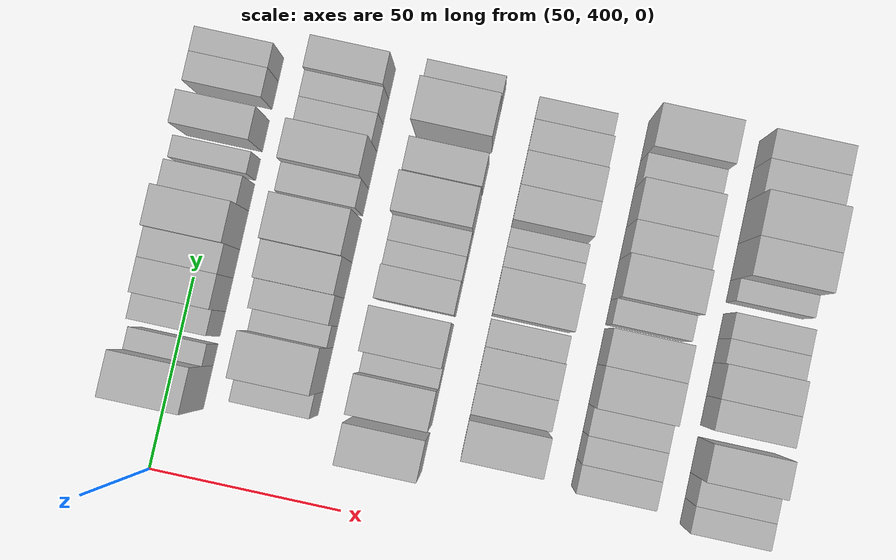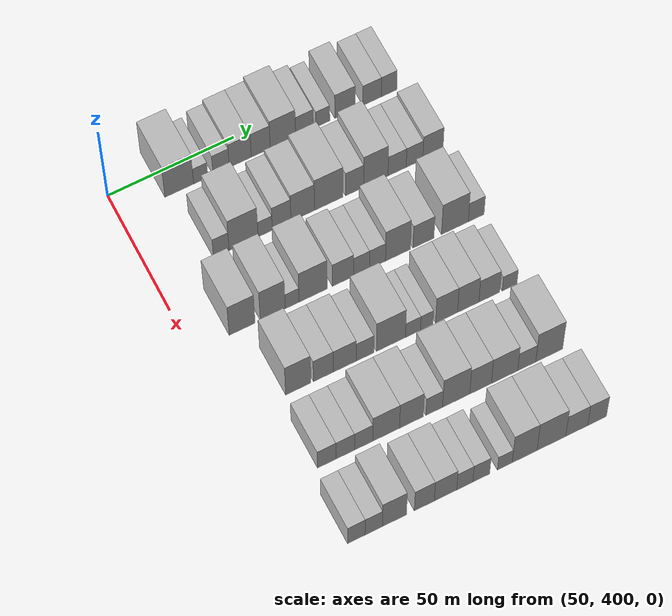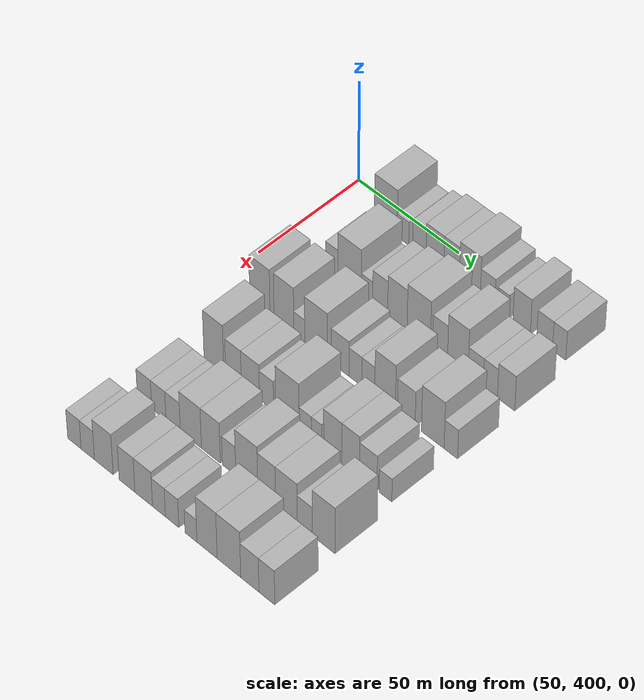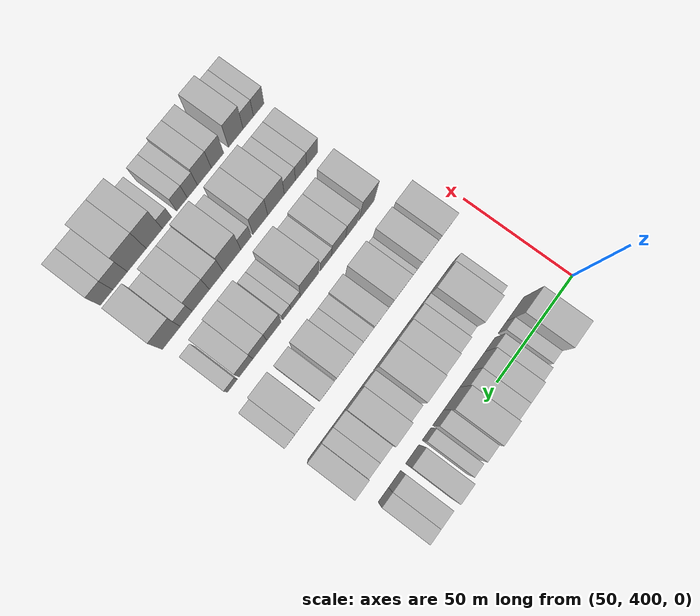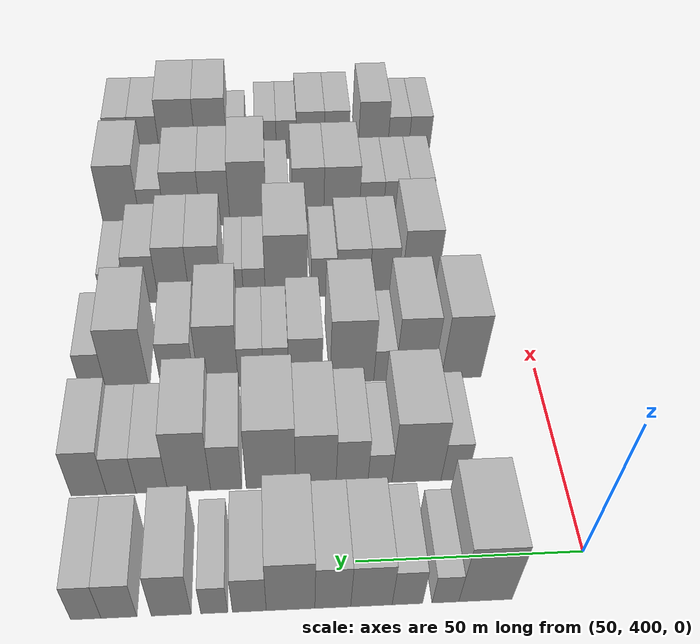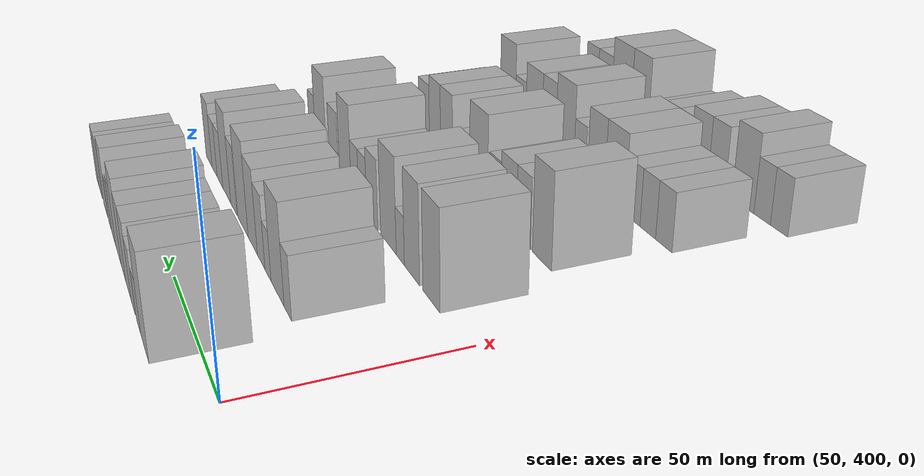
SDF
<sdf version="1.6">
 <world name="default">
  <model name="building_106">
   <static>1</static>
   <pose>50.0000 423.4185 0 0.000000 0.000000 0.000000</pose>
   <link name="link">
    <pose>0 0 12.00 0 0 0</pose>
    <collision name="collision"><geometry><box><size>20.0000 11.3640 24.0000</size></box></geometry></collision>
    <visual name="visual">
     <cast_shadows>0</cast_shadows>
     <geometry><box><size>20.0000 11.3640 24.0000</size></box></geometry>
     <material>
      <script>
       <uri>model://HANNAS_wall/materials/scripts</uri>
       <uri>model://HANNAS_wall/materials/textures</uri>
       <name>vrc/HANNAS_wall</name>
      </script>
     </material>
    </visual>
   </link>
  </model>
  <model name="building_107">
   <static>1</static>
   <pose>50.0000 431.9391 0 0.000000 0.000000 0.000000</pose>
   <link name="link">
    <pose>0 0 6.00 0 0 0</pose>
    <collision name="collision"><geometry><box><size>20.0000 5.6773 12.0000</size></box></geometry></collision>
    <visual name="visual">
     <cast_shadows>0</cast_shadows>
     <geometry><box><size>20.0000 5.6773 12.0000</size></box></geometry>
     <material>
      <script>
       <uri>model://HANNAS_wall/materials/scripts</uri>
       <uri>model://HANNAS_wall/materials/textures</uri>
       <name>vrc/HANNAS_wall</name>
      </script>
     </material>
    </visual>
   </link>
  </model>
  <model name="building_108">
   <static>1</static>
   <pose>50.0000 440.0176 0 0.000000 0.000000 0.000000</pose>
   <link name="link">
    <pose>0 0 7.50 0 0 0</pose>
    <collision name="collision"><geometry><box><size>20.0000 6.4796 15.0000</size></box></geometry></collision>
    <visual name="visual">
     <cast_shadows>0</cast_shadows>
     <geometry><box><size>20.0000 6.4796 15.0000</size></box></geometry>
     <material>
      <script>
       <uri>model://HANNAS_wall/materials/scripts</uri>
       <uri>model://HANNAS_wall/materials/textures</uri>
       <name>vrc/HANNAS_wall</name>
      </script>
     </material>
    </visual>
   </link>
  </model>
  <model name="building_109">
   <static>1</static>
   <pose>50.0000 447.6348 0 0.000000 0.000000 0.000000</pose>
   <link name="link">
    <pose>0 0 9.00 0 0 0</pose>
    <collision name="collision"><geometry><box><size>20.0000 8.7548 18.0000</size></box></geometry></collision>
    <visual name="visual">
     <cast_shadows>0</cast_shadows>
     <geometry><box><size>20.0000 8.7548 18.0000</size></box></geometry>
     <material>
      <script>
       <uri>model://HANNAS_wall/materials/scripts</uri>
       <uri>model://HANNAS_wall/materials/textures</uri>
       <name>vrc/HANNAS_wall</name>
      </script>
     </material>
    </visual>
   </link>
  </model>
  <model name="building_110">
   <static>1</static>
   <pose>50.0000 455.7867 0 0.000000 0.000000 0.000000</pose>
   <link name="link">
    <pose>0 0 9.00 0 0 0</pose>
    <collision name="collision"><geometry><box><size>20.0000 7.5490 18.0000</size></box></geometry></collision>
    <visual name="visual">
     <cast_shadows>0</cast_shadows>
     <geometry><box><size>20.0000 7.5490 18.0000</size></box></geometry>
     <material>
      <script>
       <uri>model://HANNAS_wall/materials/scripts</uri>
       <uri>model://HANNAS_wall/materials/textures</uri>
       <name>vrc/HANNAS_wall</name>
      </script>
     </material>
    </visual>
   </link>
  </model>
  <model name="building_111">
   <static>1</static>
   <pose>50.0000 464.6653 0 0.000000 0.000000 0.000000</pose>
   <link name="link">
    <pose>0 0 10.50 0 0 0</pose>
    <collision name="collision"><geometry><box><size>20.0000 10.2081 21.0000</size></box></geometry></collision>
    <visual name="visual">
     <cast_shadows>0</cast_shadows>
     <geometry><box><size>20.0000 10.2081 21.0000</size></box></geometry>
     <material>
      <script>
       <uri>model://HANNAS_wall/materials/scripts</uri>
       <uri>model://HANNAS_wall/materials/textures</uri>
       <name>vrc/HANNAS_wall</name>
      </script>
     </material>
    </visual>
   </link>
  </model>
  <model name="building_112">
   <static>1</static>
   <pose>50.0000 473.3105 0 0.000000 0.000000 0.000000</pose>
   <link name="link">
    <pose>0 0 7.50 0 0 0</pose>
    <collision name="collision"><geometry><box><size>20.0000 7.0825 15.0000</size></box></geometry></collision>
    <visual name="visual">
     <cast_shadows>0</cast_shadows>
     <geometry><box><size>20.0000 7.0825 15.0000</size></box></geometry>
     <material>
      <script>
       <uri>model://HANNAS_wall/materials/scripts</uri>
       <uri>model://HANNAS_wall/materials/textures</uri>
       <name>vrc/HANNAS_wall</name>
      </script>
     </material>
    </visual>
   </link>
  </model>
  <model name="building_113">
   <static>1</static>
   <pose>50.0000 480.6647 0 0.000000 0.000000 0.000000</pose>
   <link name="link">
    <pose>0 0 6.00 0 0 0</pose>
    <collision name="collision"><geometry><box><size>20.0000 5.6259 12.0000</size></box></geometry></collision>
    <visual name="visual">
     <cast_shadows>0</cast_shadows>
     <geometry><box><size>20.0000 5.6259 12.0000</size></box></geometry>
     <material>
      <script>
       <uri>model://HANNAS_wall/materials/scripts</uri>
       <uri>model://HANNAS_wall/materials/textures</uri>
       <name>vrc/HANNAS_wall</name>
      </script>
     </material>
    </visual>
   </link>
  </model>
  <model name="building_114">
   <static>1</static>
   <pose>50.0000 489.6404 0 0.000000 0.000000 0.000000</pose>
   <link name="link">
    <pose>0 0 9.00 0 0 0</pose>
    <collision name="collision"><geometry><box><size>20.0000 8.3254 18.0000</size></box></geometry></collision>
    <visual name="visual">
     <cast_shadows>0</cast_shadows>
     <geometry><box><size>20.0000 8.3254 18.0000</size></box></geometry>
     <material>
      <script>
       <uri>model://HANNAS_wall/materials/scripts</uri>
       <uri>model://HANNAS_wall/materials/textures</uri>
       <name>vrc/HANNAS_wall</name>
      </script>
     </material>
    </visual>
   </link>
  </model>
  <model name="building_115">
   <static>1</static>
   <pose>50.0000 500.5345 0 0.000000 0.000000 0.000000</pose>
   <link name="link">
    <pose>0 0 7.50 0 0 0</pose>
    <collision name="collision"><geometry><box><size>20.0000 7.4629 15.0000</size></box></geometry></collision>
    <visual name="visual">
     <cast_shadows>0</cast_shadows>
     <geometry><box><size>20.0000 7.4629 15.0000</size></box></geometry>
     <material>
      <script>
       <uri>model://HANNAS_wall/materials/scripts</uri>
       <uri>model://HANNAS_wall/materials/textures</uri>
       <name>vrc/HANNAS_wall</name>
      </script>
     </material>
    </visual>
   </link>
  </model>
  <model name="building_116">
   <static>1</static>
   <pose>50.0000 507.4129 0 0.000000 0.000000 0.000000</pose>
   <link name="link">
    <pose>0 0 7.50 0 0 0</pose>
    <collision name="collision"><geometry><box><size>20.0000 6.2939 15.0000</size></box></geometry></collision>
    <visual name="visual">
     <cast_shadows>0</cast_shadows>
     <geometry><box><size>20.0000 6.2939 15.0000</size></box></geometry>
     <material>
      <script>
       <uri>model://HANNAS_wall/materials/scripts</uri>
       <uri>model://HANNAS_wall/materials/textures</uri>
       <name>vrc/HANNAS_wall</name>
      </script>
     </material>
    </visual>
   </link>
  </model>
  <model name="building_219">
   <static>1</static>
   <pose>79.0000 425.5563 0 0.000000 0.000000 0.000000</pose>
   <link name="link">
    <pose>0 0 7.50 0 0 0</pose>
    <collision name="collision"><geometry><box><size>20.0000 6.1472 15.0000</size></box></geometry></collision>
    <visual name="visual">
     <cast_shadows>0</cast_shadows>
     <geometry><box><size>20.0000 6.1472 15.0000</size></box></geometry>
     <material>
      <script>
       <uri>model://HANNAS_wall/materials/scripts</uri>
       <uri>model://HANNAS_wall/materials/textures</uri>
       <name>vrc/HANNAS_wall</name>
      </script>
     </material>
    </visual>
   </link>
  </model>
  <model name="building_220">
   <static>1</static>
   <pose>79.0000 434.3610 0 0.000000 0.000000 0.000000</pose>
   <link name="link">
    <pose>0 0 12.00 0 0 0</pose>
    <collision name="collision"><geometry><box><size>20.0000 11.4622 24.0000</size></box></geometry></collision>
    <visual name="visual">
     <cast_shadows>0</cast_shadows>
     <geometry><box><size>20.0000 11.4622 24.0000</size></box></geometry>
     <material>
      <script>
       <uri>model://HANNAS_wall/materials/scripts</uri>
       <uri>model://HANNAS_wall/materials/textures</uri>
       <name>vrc/HANNAS_wall</name>
      </script>
     </material>
    </visual>
   </link>
  </model>
  <model name="building_221">
   <static>1</static>
   <pose>79.0000 442.8890 0 0.000000 0.000000 0.000000</pose>
   <link name="link">
    <pose>0 0 6.00 0 0 0</pose>
    <collision name="collision"><geometry><box><size>20.0000 5.5937 12.0000</size></box></geometry></collision>
    <visual name="visual">
     <cast_shadows>0</cast_shadows>
     <geometry><box><size>20.0000 5.5937 12.0000</size></box></geometry>
     <material>
      <script>
       <uri>model://HANNAS_wall/materials/scripts</uri>
       <uri>model://HANNAS_wall/materials/textures</uri>
       <name>vrc/HANNAS_wall</name>
      </script>
     </material>
    </visual>
   </link>
  </model>
  <model name="building_222">
   <static>1</static>
   <pose>79.0000 449.3753 0 0.000000 0.000000 0.000000</pose>
   <link name="link">
    <pose>0 0 9.00 0 0 0</pose>
    <collision name="collision"><geometry><box><size>20.0000 7.3790 18.0000</size></box></geometry></collision>
    <visual name="visual">
     <cast_shadows>0</cast_shadows>
     <geometry><box><size>20.0000 7.3790 18.0000</size></box></geometry>
     <material>
      <script>
       <uri>model://HANNAS_wall/materials/scripts</uri>
       <uri>model://HANNAS_wall/materials/textures</uri>
       <name>vrc/HANNAS_wall</name>
      </script>
     </material>
    </visual>
   </link>
  </model>
  <model name="building_223">
   <static>1</static>
   <pose>79.0000 457.7727 0 0.000000 0.000000 0.000000</pose>
   <link name="link">
    <pose>0 0 10.50 0 0 0</pose>
    <collision name="collision"><geometry><box><size>20.0000 9.4157 21.0000</size></box></geometry></collision>
    <visual name="visual">
     <cast_shadows>0</cast_shadows>
     <geometry><box><size>20.0000 9.4157 21.0000</size></box></geometry>
     <material>
      <script>
       <uri>model://HANNAS_wall/materials/scripts</uri>
       <uri>model://HANNAS_wall/materials/textures</uri>
       <name>vrc/HANNAS_wall</name>
      </script>
     </material>
    </visual>
   </link>
  </model>
  <model name="building_224">
   <static>1</static>
   <pose>79.0000 468.1235 0 0.000000 0.000000 0.000000</pose>
   <link name="link">
    <pose>0 0 12.00 0 0 0</pose>
    <collision name="collision"><geometry><box><size>20.0000 11.2860 24.0000</size></box></geometry></collision>
    <visual name="visual">
     <cast_shadows>0</cast_shadows>
     <geometry><box><size>20.0000 11.2860 24.0000</size></box></geometry>
     <material>
      <script>
       <uri>model://HANNAS_wall/materials/scripts</uri>
       <uri>model://HANNAS_wall/materials/textures</uri>
       <name>vrc/HANNAS_wall</name>
      </script>
     </material>
    </visual>
   </link>
  </model>
  <model name="building_225">
   <static>1</static>
   <pose>79.0000 478.3700 0 0.000000 0.000000 0.000000</pose>
   <link name="link">
    <pose>0 0 9.00 0 0 0</pose>
    <collision name="collision"><geometry><box><size>20.0000 7.2070 18.0000</size></box></geometry></collision>
    <visual name="visual">
     <cast_shadows>0</cast_shadows>
     <geometry><box><size>20.0000 7.2070 18.0000</size></box></geometry>
     <material>
      <script>
       <uri>model://HANNAS_wall/materials/scripts</uri>
       <uri>model://HANNAS_wall/materials/textures</uri>
       <name>vrc/HANNAS_wall</name>
      </script>
     </material>
    </visual>
   </link>
  </model>
  <model name="building_226">
   <static>1</static>
   <pose>79.0000 486.8627 0 0.000000 0.000000 0.000000</pose>
   <link name="link">
    <pose>0 0 12.00 0 0 0</pose>
    <collision name="collision"><geometry><box><size>20.0000 9.7782 24.0000</size></box></geometry></collision>
    <visual name="visual">
     <cast_shadows>0</cast_shadows>
     <geometry><box><size>20.0000 9.7782 24.0000</size></box></geometry>
     <material>
      <script>
       <uri>model://HANNAS_wall/materials/scripts</uri>
       <uri>model://HANNAS_wall/materials/textures</uri>
       <name>vrc/HANNAS_wall</name>
      </script>
     </material>
    </visual>
   </link>
  </model>
  <model name="building_227">
   <static>1</static>
   <pose>79.0000 495.4021 0 0.000000 0.000000 0.000000</pose>
   <link name="link">
    <pose>0 0 7.50 0 0 0</pose>
    <collision name="collision"><geometry><box><size>20.0000 7.3007 15.0000</size></box></geometry></collision>
    <visual name="visual">
     <cast_shadows>0</cast_shadows>
     <geometry><box><size>20.0000 7.3007 15.0000</size></box></geometry>
     <material>
      <script>
       <uri>model://HANNAS_wall/materials/scripts</uri>
       <uri>model://HANNAS_wall/materials/textures</uri>
       <name>vrc/HANNAS_wall</name>
      </script>
     </material>
    </visual>
   </link>
  </model>
  <model name="building_228">
   <static>1</static>
   <pose>79.0000 502.3948 0 0.000000 0.000000 0.000000</pose>
   <link name="link">
    <pose>0 0 7.50 0 0 0</pose>
    <collision name="collision"><geometry><box><size>20.0000 6.6848 15.0000</size></box></geometry></collision>
    <visual name="visual">
     <cast_shadows>0</cast_shadows>
     <geometry><box><size>20.0000 6.6848 15.0000</size></box></geometry>
     <material>
      <script>
       <uri>model://HANNAS_wall/materials/scripts</uri>
       <uri>model://HANNAS_wall/materials/textures</uri>
       <name>vrc/HANNAS_wall</name>
      </script>
     </material>
    </visual>
   </link>
  </model>
  <model name="building_229">
   <static>1</static>
   <pose>79.0000 509.8208 0 0.000000 0.000000 0.000000</pose>
   <link name="link">
    <pose>0 0 9.00 0 0 0</pose>
    <collision name="collision"><geometry><box><size>20.0000 8.1672 18.0000</size></box></geometry></collision>
    <visual name="visual">
     <cast_shadows>0</cast_shadows>
     <geometry><box><size>20.0000 8.1672 18.0000</size></box></geometry>
     <material>
      <script>
       <uri>model://HANNAS_wall/materials/scripts</uri>
       <uri>model://HANNAS_wall/materials/textures</uri>
       <name>vrc/HANNAS_wall</name>
      </script>
     </material>
    </visual>
   </link>
  </model>
  <model name="building_334">
   <static>1</static>
   <pose>108.0000 419.1911 0 0.000000 0.000000 0.000000</pose>
   <link name="link">
    <pose>0 0 12.00 0 0 0</pose>
    <collision name="collision"><geometry><box><size>20.0000 10.1255 24.0000</size></box></geometry></collision>
    <visual name="visual">
     <cast_shadows>0</cast_shadows>
     <geometry><box><size>20.0000 10.1255 24.0000</size></box></geometry>
     <material>
      <script>
       <uri>model://HANNAS_wall/materials/scripts</uri>
       <uri>model://HANNAS_wall/materials/textures</uri>
       <name>vrc/HANNAS_wall</name>
      </script>
     </material>
    </visual>
   </link>
  </model>
  <model name="building_335">
   <static>1</static>
   <pose>108.0000 431.1496 0 0.000000 0.000000 0.000000</pose>
   <link name="link">
    <pose>0 0 12.00 0 0 0</pose>
    <collision name="collision"><geometry><box><size>20.0000 9.7914 24.0000</size></box></geometry></collision>
    <visual name="visual">
     <cast_shadows>0</cast_shadows>
     <geometry><box><size>20.0000 9.7914 24.0000</size></box></geometry>
     <material>
      <script>
       <uri>model://HANNAS_wall/materials/scripts</uri>
       <uri>model://HANNAS_wall/materials/textures</uri>
       <name>vrc/HANNAS_wall</name>
      </script>
     </material>
    </visual>
   </link>
  </model>
  <model name="building_336">
   <static>1</static>
   <pose>108.0000 438.7518 0 0.000000 0.000000 0.000000</pose>
   <link name="link">
    <pose>0 0 6.00 0 0 0</pose>
    <collision name="collision"><geometry><box><size>20.0000 5.4130 12.0000</size></box></geometry></collision>
    <visual name="visual">
     <cast_shadows>0</cast_shadows>
     <geometry><box><size>20.0000 5.4130 12.0000</size></box></geometry>
     <material>
      <script>
       <uri>model://HANNAS_wall/materials/scripts</uri>
       <uri>model://HANNAS_wall/materials/textures</uri>
       <name>vrc/HANNAS_wall</name>
      </script>
     </material>
    </visual>
   </link>
  </model>
  <model name="building_337">
   <static>1</static>
   <pose>108.0000 446.9884 0 0.000000 0.000000 0.000000</pose>
   <link name="link">
    <pose>0 0 12.00 0 0 0</pose>
    <collision name="collision"><geometry><box><size>20.0000 11.0601 24.0000</size></box></geometry></collision>
    <visual name="visual">
     <cast_shadows>0</cast_shadows>
     <geometry><box><size>20.0000 11.0601 24.0000</size></box></geometry>
     <material>
      <script>
       <uri>model://HANNAS_wall/materials/scripts</uri>
       <uri>model://HANNAS_wall/materials/textures</uri>
       <name>vrc/HANNAS_wall</name>
      </script>
     </material>
    </visual>
   </link>
  </model>
  <model name="building_338">
   <static>1</static>
   <pose>108.0000 458.7392 0 0.000000 0.000000 0.000000</pose>
   <link name="link">
    <pose>0 0 9.00 0 0 0</pose>
    <collision name="collision"><geometry><box><size>20.0000 8.4416 18.0000</size></box></geometry></collision>
    <visual name="visual">
     <cast_shadows>0</cast_shadows>
     <geometry><box><size>20.0000 8.4416 18.0000</size></box></geometry>
     <material>
      <script>
       <uri>model://HANNAS_wall/materials/scripts</uri>
       <uri>model://HANNAS_wall/materials/textures</uri>
       <name>vrc/HANNAS_wall</name>
      </script>
     </material>
    </visual>
   </link>
  </model>
  <model name="building_339">
   <static>1</static>
   <pose>108.0000 466.0679 0 0.000000 0.000000 0.000000</pose>
   <link name="link">
    <pose>0 0 7.50 0 0 0</pose>
    <collision name="collision"><geometry><box><size>20.0000 6.2158 15.0000</size></box></geometry></collision>
    <visual name="visual">
     <cast_shadows>0</cast_shadows>
     <geometry><box><size>20.0000 6.2158 15.0000</size></box></geometry>
     <material>
      <script>
       <uri>model://HANNAS_wall/materials/scripts</uri>
       <uri>model://HANNAS_wall/materials/textures</uri>
       <name>vrc/HANNAS_wall</name>
      </script>
     </material>
    </visual>
   </link>
  </model>
  <model name="building_340">
   <static>1</static>
   <pose>108.0000 472.3453 0 0.000000 0.000000 0.000000</pose>
   <link name="link">
    <pose>0 0 7.50 0 0 0</pose>
    <collision name="collision"><geometry><box><size>20.0000 6.3391 15.0000</size></box></geometry></collision>
    <visual name="visual">
     <cast_shadows>0</cast_shadows>
     <geometry><box><size>20.0000 6.3391 15.0000</size></box></geometry>
     <material>
      <script>
       <uri>model://HANNAS_wall/materials/scripts</uri>
       <uri>model://HANNAS_wall/materials/textures</uri>
       <name>vrc/HANNAS_wall</name>
      </script>
     </material>
    </visual>
   </link>
  </model>
  <model name="building_341">
   <static>1</static>
   <pose>108.0000 480.4631 0 0.000000 0.000000 0.000000</pose>
   <link name="link">
    <pose>0 0 12.00 0 0 0</pose>
    <collision name="collision"><geometry><box><size>20.0000 9.8967 24.0000</size></box></geometry></collision>
    <visual name="visual">
     <cast_shadows>0</cast_shadows>
     <geometry><box><size>20.0000 9.8967 24.0000</size></box></geometry>
     <material>
      <script>
       <uri>model://HANNAS_wall/materials/scripts</uri>
       <uri>model://HANNAS_wall/materials/textures</uri>
       <name>vrc/HANNAS_wall</name>
      </script>
     </material>
    </visual>
   </link>
  </model>
  <model name="building_342">
   <static>1</static>
   <pose>108.0000 490.6073 0 0.000000 0.000000 0.000000</pose>
   <link name="link">
    <pose>0 0 9.00 0 0 0</pose>
    <collision name="collision"><geometry><box><size>20.0000 8.3915 18.0000</size></box></geometry></collision>
    <visual name="visual">
     <cast_shadows>0</cast_shadows>
     <geometry><box><size>20.0000 8.3915 18.0000</size></box></geometry>
     <material>
      <script>
       <uri>model://HANNAS_wall/materials/scripts</uri>
       <uri>model://HANNAS_wall/materials/textures</uri>
       <name>vrc/HANNAS_wall</name>
      </script>
     </material>
    </visual>
   </link>
  </model>
  <model name="building_343">
   <static>1</static>
   <pose>108.0000 503.1635 0 0.000000 0.000000 0.000000</pose>
   <link name="link">
    <pose>0 0 12.00 0 0 0</pose>
    <collision name="collision"><geometry><box><size>20.0000 10.7210 24.0000</size></box></geometry></collision>
    <visual name="visual">
     <cast_shadows>0</cast_shadows>
     <geometry><box><size>20.0000 10.7210 24.0000</size></box></geometry>
     <material>
      <script>
       <uri>model://HANNAS_wall/materials/scripts</uri>
       <uri>model://HANNAS_wall/materials/textures</uri>
       <name>vrc/HANNAS_wall</name>
      </script>
     </material>
    </visual>
   </link>
  </model>
  <model name="building_344">
   <static>1</static>
   <pose>108.0000 511.6903 0 0.000000 0.000000 0.000000</pose>
   <link name="link">
    <pose>0 0 7.50 0 0 0</pose>
    <collision name="collision"><geometry><box><size>20.0000 6.3326 15.0000</size></box></geometry></collision>
    <visual name="visual">
     <cast_shadows>0</cast_shadows>
     <geometry><box><size>20.0000 6.3326 15.0000</size></box></geometry>
     <material>
      <script>
       <uri>model://HANNAS_wall/materials/scripts</uri>
       <uri>model://HANNAS_wall/materials/textures</uri>
       <name>vrc/HANNAS_wall</name>
      </script>
     </material>
    </visual>
   </link>
  </model>
  <model name="building_441">
   <static>1</static>
   <pose>137.0000 426.2929 0 0.000000 0.000000 0.000000</pose>
   <link name="link">
    <pose>0 0 12.00 0 0 0</pose>
    <collision name="collision"><geometry><box><size>20.0000 9.7971 24.0000</size></box></geometry></collision>
    <visual name="visual">
     <cast_shadows>0</cast_shadows>
     <geometry><box><size>20.0000 9.7971 24.0000</size></box></geometry>
     <material>
      <script>
       <uri>model://HANNAS_wall/materials/scripts</uri>
       <uri>model://HANNAS_wall/materials/textures</uri>
       <name>vrc/HANNAS_wall</name>
      </script>
     </material>
    </visual>
   </link>
  </model>
  <model name="building_442">
   <static>1</static>
   <pose>137.0000 436.0396 0 0.000000 0.000000 0.000000</pose>
   <link name="link">
    <pose>0 0 9.00 0 0 0</pose>
    <collision name="collision"><geometry><box><size>20.0000 7.6964 18.0000</size></box></geometry></collision>
    <visual name="visual">
     <cast_shadows>0</cast_shadows>
     <geometry><box><size>20.0000 7.6964 18.0000</size></box></geometry>
     <material>
      <script>
       <uri>model://HANNAS_wall/materials/scripts</uri>
       <uri>model://HANNAS_wall/materials/textures</uri>
       <name>vrc/HANNAS_wall</name>
      </script>
     </material>
    </visual>
   </link>
  </model>
  <model name="building_443">
   <static>1</static>
   <pose>137.0000 444.3621 0 0.000000 0.000000 0.000000</pose>
   <link name="link">
    <pose>0 0 9.00 0 0 0</pose>
    <collision name="collision"><geometry><box><size>20.0000 8.9484 18.0000</size></box></geometry></collision>
    <visual name="visual">
     <cast_shadows>0</cast_shadows>
     <geometry><box><size>20.0000 8.9484 18.0000</size></box></geometry>
     <material>
      <script>
       <uri>model://HANNAS_wall/materials/scripts</uri>
       <uri>model://HANNAS_wall/materials/textures</uri>
       <name>vrc/HANNAS_wall</name>
      </script>
     </material>
    </visual>
   </link>
  </model>
  <model name="building_444">
   <static>1</static>
   <pose>137.0000 452.2883 0 0.000000 0.000000 0.000000</pose>
   <link name="link">
    <pose>0 0 7.50 0 0 0</pose>
    <collision name="collision"><geometry><box><size>20.0000 6.9041 15.0000</size></box></geometry></collision>
    <visual name="visual">
     <cast_shadows>0</cast_shadows>
     <geometry><box><size>20.0000 6.9041 15.0000</size></box></geometry>
     <material>
      <script>
       <uri>model://HANNAS_wall/materials/scripts</uri>
       <uri>model://HANNAS_wall/materials/textures</uri>
       <name>vrc/HANNAS_wall</name>
      </script>
     </material>
    </visual>
   </link>
  </model>
  <model name="building_445">
   <static>1</static>
   <pose>137.0000 462.4537 0 0.000000 0.000000 0.000000</pose>
   <link name="link">
    <pose>0 0 12.00 0 0 0</pose>
    <collision name="collision"><geometry><box><size>20.0000 11.4267 24.0000</size></box></geometry></collision>
    <visual name="visual">
     <cast_shadows>0</cast_shadows>
     <geometry><box><size>20.0000 11.4267 24.0000</size></box></geometry>
     <material>
      <script>
       <uri>model://HANNAS_wall/materials/scripts</uri>
       <uri>model://HANNAS_wall/materials/textures</uri>
       <name>vrc/HANNAS_wall</name>
      </script>
     </material>
    </visual>
   </link>
  </model>
  <model name="building_446">
   <static>1</static>
   <pose>137.0000 471.1199 0 0.000000 0.000000 0.000000</pose>
   <link name="link">
    <pose>0 0 6.00 0 0 0</pose>
    <collision name="collision"><geometry><box><size>20.0000 5.9057 12.0000</size></box></geometry></collision>
    <visual name="visual">
     <cast_shadows>0</cast_shadows>
     <geometry><box><size>20.0000 5.9057 12.0000</size></box></geometry>
     <material>
      <script>
       <uri>model://HANNAS_wall/materials/scripts</uri>
       <uri>model://HANNAS_wall/materials/textures</uri>
       <name>vrc/HANNAS_wall</name>
      </script>
     </material>
    </visual>
   </link>
  </model>
  <model name="building_447">
   <static>1</static>
   <pose>137.0000 476.5241 0 0.000000 0.000000 0.000000</pose>
   <link name="link">
    <pose>0 0 6.00 0 0 0</pose>
    <collision name="collision"><geometry><box><size>20.0000 4.9026 12.0000</size></box></geometry></collision>
    <visual name="visual">
     <cast_shadows>0</cast_shadows>
     <geometry><box><size>20.0000 4.9026 12.0000</size></box></geometry>
     <material>
      <script>
       <uri>model://HANNAS_wall/materials/scripts</uri>
       <uri>model://HANNAS_wall/materials/textures</uri>
       <name>vrc/HANNAS_wall</name>
      </script>
     </material>
    </visual>
   </link>
  </model>
  <model name="building_448">
   <static>1</static>
   <pose>137.0000 484.3159 0 0.000000 0.000000 0.000000</pose>
   <link name="link">
    <pose>0 0 10.50 0 0 0</pose>
    <collision name="collision"><geometry><box><size>20.0000 8.6812 21.0000</size></box></geometry></collision>
    <visual name="visual">
     <cast_shadows>0</cast_shadows>
     <geometry><box><size>20.0000 8.6812 21.0000</size></box></geometry>
     <material>
      <script>
       <uri>model://HANNAS_wall/materials/scripts</uri>
       <uri>model://HANNAS_wall/materials/textures</uri>
       <name>vrc/HANNAS_wall</name>
      </script>
     </material>
    </visual>
   </link>
  </model>
  <model name="building_449">
   <static>1</static>
   <pose>137.0000 492.8764 0 0.000000 0.000000 0.000000</pose>
   <link name="link">
    <pose>0 0 10.50 0 0 0</pose>
    <collision name="collision"><geometry><box><size>20.0000 8.4398 21.0000</size></box></geometry></collision>
    <visual name="visual">
     <cast_shadows>0</cast_shadows>
     <geometry><box><size>20.0000 8.4398 21.0000</size></box></geometry>
     <material>
      <script>
       <uri>model://HANNAS_wall/materials/scripts</uri>
       <uri>model://HANNAS_wall/materials/textures</uri>
       <name>vrc/HANNAS_wall</name>
      </script>
     </material>
    </visual>
   </link>
  </model>
  <model name="building_450">
   <static>1</static>
   <pose>137.0000 501.2401 0 0.000000 0.000000 0.000000</pose>
   <link name="link">
    <pose>0 0 9.00 0 0 0</pose>
    <collision name="collision"><geometry><box><size>20.0000 8.2876 18.0000</size></box></geometry></collision>
    <visual name="visual">
     <cast_shadows>0</cast_shadows>
     <geometry><box><size>20.0000 8.2876 18.0000</size></box></geometry>
     <material>
      <script>
       <uri>model://HANNAS_wall/materials/scripts</uri>
       <uri>model://HANNAS_wall/materials/textures</uri>
       <name>vrc/HANNAS_wall</name>
      </script>
     </material>
    </visual>
   </link>
  </model>
  <model name="building_451">
   <static>1</static>
   <pose>137.0000 509.3414 0 0.000000 0.000000 0.000000</pose>
   <link name="link">
    <pose>0 0 6.00 0 0 0</pose>
    <collision name="collision"><geometry><box><size>20.0000 5.9149 12.0000</size></box></geometry></collision>
    <visual name="visual">
     <cast_shadows>0</cast_shadows>
     <geometry><box><size>20.0000 5.9149 12.0000</size></box></geometry>
     <material>
      <script>
       <uri>model://HANNAS_wall/materials/scripts</uri>
       <uri>model://HANNAS_wall/materials/textures</uri>
       <name>vrc/HANNAS_wall</name>
      </script>
     </material>
    </visual>
   </link>
  </model>
  <model name="building_552">
   <static>1</static>
   <pose>166.0000 422.3957 0 0.000000 0.000000 0.000000</pose>
   <link name="link">
    <pose>0 0 7.50 0 0 0</pose>
    <collision name="collision"><geometry><box><size>20.0000 7.1332 15.0000</size></box></geometry></collision>
    <visual name="visual">
     <cast_shadows>0</cast_shadows>
     <geometry><box><size>20.0000 7.1332 15.0000</size></box></geometry>
     <material>
      <script>
       <uri>model://HANNAS_wall/materials/scripts</uri>
       <uri>model://HANNAS_wall/materials/textures</uri>
       <name>vrc/HANNAS_wall</name>
      </script>
     </material>
    </visual>
   </link>
  </model>
  <model name="building_553">
   <static>1</static>
   <pose>166.0000 429.5161 0 0.000000 0.000000 0.000000</pose>
   <link name="link">
    <pose>0 0 7.50 0 0 0</pose>
    <collision name="collision"><geometry><box><size>20.0000 7.1076 15.0000</size></box></geometry></collision>
    <visual name="visual">
     <cast_shadows>0</cast_shadows>
     <geometry><box><size>20.0000 7.1076 15.0000</size></box></geometry>
     <material>
      <script>
       <uri>model://HANNAS_wall/materials/scripts</uri>
       <uri>model://HANNAS_wall/materials/textures</uri>
       <name>vrc/HANNAS_wall</name>
      </script>
     </material>
    </visual>
   </link>
  </model>
  <model name="building_554">
   <static>1</static>
   <pose>166.0000 436.5988 0 0.000000 0.000000 0.000000</pose>
   <link name="link">
    <pose>0 0 7.50 0 0 0</pose>
    <collision name="collision"><geometry><box><size>20.0000 7.0578 15.0000</size></box></geometry></collision>
    <visual name="visual">
     <cast_shadows>0</cast_shadows>
     <geometry><box><size>20.0000 7.0578 15.0000</size></box></geometry>
     <material>
      <script>
       <uri>model://HANNAS_wall/materials/scripts</uri>
       <uri>model://HANNAS_wall/materials/textures</uri>
       <name>vrc/HANNAS_wall</name>
      </script>
     </material>
    </visual>
   </link>
  </model>
  <model name="building_555">
   <static>1</static>
   <pose>166.0000 445.3219 0 0.000000 0.000000 0.000000</pose>
   <link name="link">
    <pose>0 0 10.50 0 0 0</pose>
    <collision name="collision"><geometry><box><size>20.0000 10.3882 21.0000</size></box></geometry></collision>
    <visual name="visual">
     <cast_shadows>0</cast_shadows>
     <geometry><box><size>20.0000 10.3882 21.0000</size></box></geometry>
     <material>
      <script>
       <uri>model://HANNAS_wall/materials/scripts</uri>
       <uri>model://HANNAS_wall/materials/textures</uri>
       <name>vrc/HANNAS_wall</name>
      </script>
     </material>
    </visual>
   </link>
  </model>
  <model name="building_556">
   <static>1</static>
   <pose>166.0000 455.1303 0 0.000000 0.000000 0.000000</pose>
   <link name="link">
    <pose>0 0 10.50 0 0 0</pose>
    <collision name="collision"><geometry><box><size>20.0000 9.2287 21.0000</size></box></geometry></collision>
    <visual name="visual">
     <cast_shadows>0</cast_shadows>
     <geometry><box><size>20.0000 9.2287 21.0000</size></box></geometry>
     <material>
      <script>
       <uri>model://HANNAS_wall/materials/scripts</uri>
       <uri>model://HANNAS_wall/materials/textures</uri>
       <name>vrc/HANNAS_wall</name>
      </script>
     </material>
    </visual>
   </link>
  </model>
  <model name="building_557">
   <static>1</static>
   <pose>166.0000 463.9839 0 0.000000 0.000000 0.000000</pose>
   <link name="link">
    <pose>0 0 7.50 0 0 0</pose>
    <collision name="collision"><geometry><box><size>20.0000 6.4786 15.0000</size></box></geometry></collision>
    <visual name="visual">
     <cast_shadows>0</cast_shadows>
     <geometry><box><size>20.0000 6.4786 15.0000</size></box></geometry>
     <material>
      <script>
       <uri>model://HANNAS_wall/materials/scripts</uri>
       <uri>model://HANNAS_wall/materials/textures</uri>
       <name>vrc/HANNAS_wall</name>
      </script>
     </material>
    </visual>
   </link>
  </model>
  <model name="building_558">
   <static>1</static>
   <pose>166.0000 472.5594 0 0.000000 0.000000 0.000000</pose>
   <link name="link">
    <pose>0 0 12.00 0 0 0</pose>
    <collision name="collision"><geometry><box><size>20.0000 10.6724 24.0000</size></box></geometry></collision>
    <visual name="visual">
     <cast_shadows>0</cast_shadows>
     <geometry><box><size>20.0000 10.6724 24.0000</size></box></geometry>
     <material>
      <script>
       <uri>model://HANNAS_wall/materials/scripts</uri>
       <uri>model://HANNAS_wall/materials/textures</uri>
       <name>vrc/HANNAS_wall</name>
      </script>
     </material>
    </visual>
   </link>
  </model>
  <model name="building_559">
   <static>1</static>
   <pose>166.0000 482.1315 0 0.000000 0.000000 0.000000</pose>
   <link name="link">
    <pose>0 0 10.50 0 0 0</pose>
    <collision name="collision"><geometry><box><size>20.0000 8.4717 21.0000</size></box></geometry></collision>
    <visual name="visual">
     <cast_shadows>0</cast_shadows>
     <geometry><box><size>20.0000 8.4717 21.0000</size></box></geometry>
     <material>
      <script>
       <uri>model://HANNAS_wall/materials/scripts</uri>
       <uri>model://HANNAS_wall/materials/textures</uri>
       <name>vrc/HANNAS_wall</name>
      </script>
     </material>
    </visual>
   </link>
  </model>
  <model name="building_560">
   <static>1</static>
   <pose>166.0000 491.5523 0 0.000000 0.000000 0.000000</pose>
   <link name="link">
    <pose>0 0 10.50 0 0 0</pose>
    <collision name="collision"><geometry><box><size>20.0000 10.3698 21.0000</size></box></geometry></collision>
    <visual name="visual">
     <cast_shadows>0</cast_shadows>
     <geometry><box><size>20.0000 10.3698 21.0000</size></box></geometry>
     <material>
      <script>
       <uri>model://HANNAS_wall/materials/scripts</uri>
       <uri>model://HANNAS_wall/materials/textures</uri>
       <name>vrc/HANNAS_wall</name>
      </script>
     </material>
    </visual>
   </link>
  </model>
  <model name="building_561">
   <static>1</static>
   <pose>166.0000 500.2899 0 0.000000 0.000000 0.000000</pose>
   <link name="link">
    <pose>0 0 7.50 0 0 0</pose>
    <collision name="collision"><geometry><box><size>20.0000 7.1054 15.0000</size></box></geometry></collision>
    <visual name="visual">
     <cast_shadows>0</cast_shadows>
     <geometry><box><size>20.0000 7.1054 15.0000</size></box></geometry>
     <material>
      <script>
       <uri>model://HANNAS_wall/materials/scripts</uri>
       <uri>model://HANNAS_wall/materials/textures</uri>
       <name>vrc/HANNAS_wall</name>
      </script>
     </material>
    </visual>
   </link>
  </model>
  <model name="building_562">
   <static>1</static>
   <pose>166.0000 509.1796 0 0.000000 0.000000 0.000000</pose>
   <link name="link">
    <pose>0 0 12.00 0 0 0</pose>
    <collision name="collision"><geometry><box><size>20.0000 10.6739 24.0000</size></box></geometry></collision>
    <visual name="visual">
     <cast_shadows>0</cast_shadows>
     <geometry><box><size>20.0000 10.6739 24.0000</size></box></geometry>
     <material>
      <script>
       <uri>model://HANNAS_wall/materials/scripts</uri>
       <uri>model://HANNAS_wall/materials/textures</uri>
       <name>vrc/HANNAS_wall</name>
      </script>
     </material>
    </visual>
   </link>
  </model>
  <model name="building_662">
   <static>1</static>
   <pose>195.0000 418.7021 0 0.000000 0.000000 0.000000</pose>
   <link name="link">
    <pose>0 0 7.50 0 0 0</pose>
    <collision name="collision"><geometry><box><size>20.0000 6.7100 15.0000</size></box></geometry></collision>
    <visual name="visual">
     <cast_shadows>0</cast_shadows>
     <geometry><box><size>20.0000 6.7100 15.0000</size></box></geometry>
     <material>
      <script>
       <uri>model://HANNAS_wall/materials/scripts</uri>
       <uri>model://HANNAS_wall/materials/textures</uri>
       <name>vrc/HANNAS_wall</name>
      </script>
     </material>
    </visual>
   </link>
  </model>
  <model name="building_663">
   <static>1</static>
   <pose>195.0000 425.3538 0 0.000000 0.000000 0.000000</pose>
   <link name="link">
    <pose>0 0 7.50 0 0 0</pose>
    <collision name="collision"><geometry><box><size>20.0000 6.5932 15.0000</size></box></geometry></collision>
    <visual name="visual">
     <cast_shadows>0</cast_shadows>
     <geometry><box><size>20.0000 6.5932 15.0000</size></box></geometry>
     <material>
      <script>
       <uri>model://HANNAS_wall/materials/scripts</uri>
       <uri>model://HANNAS_wall/materials/textures</uri>
       <name>vrc/HANNAS_wall</name>
      </script>
     </material>
    </visual>
   </link>
  </model>
  <model name="building_664">
   <static>1</static>
   <pose>195.0000 433.2895 0 0.000000 0.000000 0.000000</pose>
   <link name="link">
    <pose>0 0 10.50 0 0 0</pose>
    <collision name="collision"><geometry><box><size>20.0000 9.2782 21.0000</size></box></geometry></collision>
    <visual name="visual">
     <cast_shadows>0</cast_shadows>
     <geometry><box><size>20.0000 9.2782 21.0000</size></box></geometry>
     <material>
      <script>
       <uri>model://HANNAS_wall/materials/scripts</uri>
       <uri>model://HANNAS_wall/materials/textures</uri>
       <name>vrc/HANNAS_wall</name>
      </script>
     </material>
    </visual>
   </link>
  </model>
  <model name="building_665">
   <static>1</static>
   <pose>195.0000 444.7821 0 0.000000 0.000000 0.000000</pose>
   <link name="link">
    <pose>0 0 9.00 0 0 0</pose>
    <collision name="collision"><geometry><box><size>20.0000 7.7070 18.0000</size></box></geometry></collision>
    <visual name="visual">
     <cast_shadows>0</cast_shadows>
     <geometry><box><size>20.0000 7.7070 18.0000</size></box></geometry>
     <material>
      <script>
       <uri>model://HANNAS_wall/materials/scripts</uri>
       <uri>model://HANNAS_wall/materials/textures</uri>
       <name>vrc/HANNAS_wall</name>
      </script>
     </material>
    </visual>
   </link>
  </model>
  <model name="building_666">
   <static>1</static>
   <pose>195.0000 452.9501 0 0.000000 0.000000 0.000000</pose>
   <link name="link">
    <pose>0 0 9.00 0 0 0</pose>
    <collision name="collision"><geometry><box><size>20.0000 8.6290 18.0000</size></box></geometry></collision>
    <visual name="visual">
     <cast_shadows>0</cast_shadows>
     <geometry><box><size>20.0000 8.6290 18.0000</size></box></geometry>
     <material>
      <script>
       <uri>model://HANNAS_wall/materials/scripts</uri>
       <uri>model://HANNAS_wall/materials/textures</uri>
       <name>vrc/HANNAS_wall</name>
      </script>
     </material>
    </visual>
   </link>
  </model>
  <model name="building_667">
   <static>1</static>
   <pose>195.0000 460.3923 0 0.000000 0.000000 0.000000</pose>
   <link name="link">
    <pose>0 0 7.50 0 0 0</pose>
    <collision name="collision"><geometry><box><size>20.0000 6.2555 15.0000</size></box></geometry></collision>
    <visual name="visual">
     <cast_shadows>0</cast_shadows>
     <geometry><box><size>20.0000 6.2555 15.0000</size></box></geometry>
     <material>
      <script>
       <uri>model://HANNAS_wall/materials/scripts</uri>
       <uri>model://HANNAS_wall/materials/textures</uri>
       <name>vrc/HANNAS_wall</name>
      </script>
     </material>
    </visual>
   </link>
  </model>
  <model name="building_668">
   <static>1</static>
   <pose>195.0000 466.7717 0 0.000000 0.000000 0.000000</pose>
   <link name="link">
    <pose>0 0 7.50 0 0 0</pose>
    <collision name="collision"><geometry><box><size>20.0000 6.5032 15.0000</size></box></geometry></collision>
    <visual name="visual">
     <cast_shadows>0</cast_shadows>
     <geometry><box><size>20.0000 6.5032 15.0000</size></box></geometry>
     <material>
      <script>
       <uri>model://HANNAS_wall/materials/scripts</uri>
       <uri>model://HANNAS_wall/materials/textures</uri>
       <name>vrc/HANNAS_wall</name>
      </script>
     </material>
    </visual>
   </link>
  </model>
  <model name="building_669">
   <static>1</static>
   <pose>195.0000 475.8902 0 0.000000 0.000000 0.000000</pose>
   <link name="link">
    <pose>0 0 6.00 0 0 0</pose>
    <collision name="collision"><geometry><box><size>20.0000 5.7339 12.0000</size></box></geometry></collision>
    <visual name="visual">
     <cast_shadows>0</cast_shadows>
     <geometry><box><size>20.0000 5.7339 12.0000</size></box></geometry>
     <material>
      <script>
       <uri>model://HANNAS_wall/materials/scripts</uri>
       <uri>model://HANNAS_wall/materials/textures</uri>
       <name>vrc/HANNAS_wall</name>
      </script>
     </material>
    </visual>
   </link>
  </model>
  <model name="building_670">
   <static>1</static>
   <pose>195.0000 483.6008 0 0.000000 0.000000 0.000000</pose>
   <link name="link">
    <pose>0 0 12.00 0 0 0</pose>
    <collision name="collision"><geometry><box><size>20.0000 9.6873 24.0000</size></box></geometry></collision>
    <visual name="visual">
     <cast_shadows>0</cast_shadows>
     <geometry><box><size>20.0000 9.6873 24.0000</size></box></geometry>
     <material>
      <script>
       <uri>model://HANNAS_wall/materials/scripts</uri>
       <uri>model://HANNAS_wall/materials/textures</uri>
       <name>vrc/HANNAS_wall</name>
      </script>
     </material>
    </visual>
   </link>
  </model>
  <model name="building_671">
   <static>1</static>
   <pose>195.0000 494.0507 0 0.000000 0.000000 0.000000</pose>
   <link name="link">
    <pose>0 0 12.00 0 0 0</pose>
    <collision name="collision"><geometry><box><size>20.0000 11.2125 24.0000</size></box></geometry></collision>
    <visual name="visual">
     <cast_shadows>0</cast_shadows>
     <geometry><box><size>20.0000 11.2125 24.0000</size></box></geometry>
     <material>
      <script>
       <uri>model://HANNAS_wall/materials/scripts</uri>
       <uri>model://HANNAS_wall/materials/textures</uri>
       <name>vrc/HANNAS_wall</name>
      </script>
     </material>
    </visual>
   </link>
  </model>
  <model name="building_672">
   <static>1</static>
   <pose>195.0000 503.9621 0 0.000000 0.000000 0.000000</pose>
   <link name="link">
    <pose>0 0 9.00 0 0 0</pose>
    <collision name="collision"><geometry><box><size>20.0000 8.6102 18.0000</size></box></geometry></collision>
    <visual name="visual">
     <cast_shadows>0</cast_shadows>
     <geometry><box><size>20.0000 8.6102 18.0000</size></box></geometry>
     <material>
      <script>
       <uri>model://HANNAS_wall/materials/scripts</uri>
       <uri>model://HANNAS_wall/materials/textures</uri>
       <name>vrc/HANNAS_wall</name>
      </script>
     </material>
    </visual>
   </link>
  </model>
  <model name="building_673">
   <static>1</static>
   <pose>195.0000 511.9770 0 0.000000 0.000000 0.000000</pose>
   <link name="link">
    <pose>0 0 9.00 0 0 0</pose>
    <collision name="collision"><geometry><box><size>20.0000 7.4195 18.0000</size></box></geometry></collision>
    <visual name="visual">
     <cast_shadows>0</cast_shadows>
     <geometry><box><size>20.0000 7.4195 18.0000</size></box></geometry>
     <material>
      <script>
       <uri>model://HANNAS_wall/materials/scripts</uri>
       <uri>model://HANNAS_wall/materials/textures</uri>
       <name>vrc/HANNAS_wall</name>
      </script>
     </material>
    </visual>
   </link>
  </model>
 </world>
</sdf>
